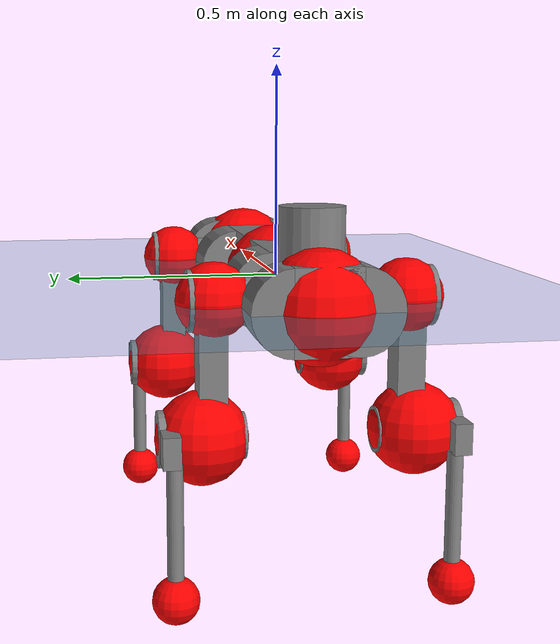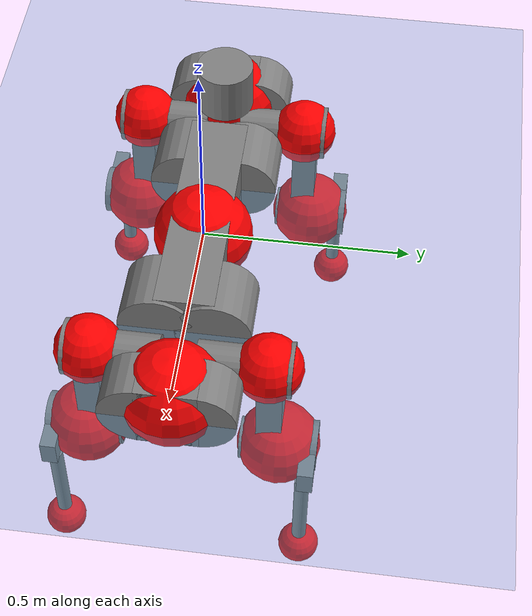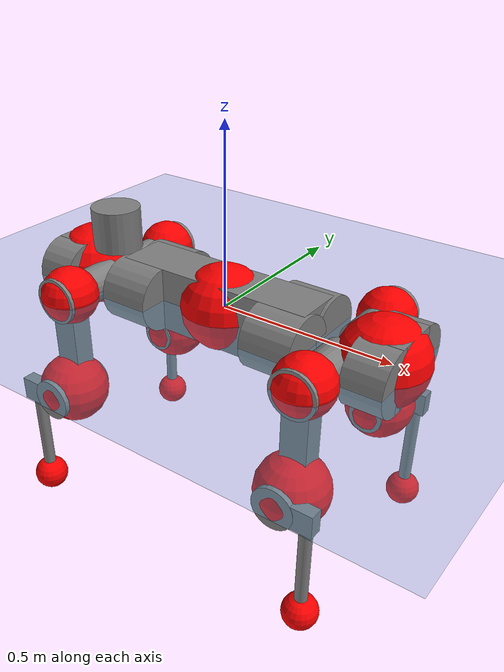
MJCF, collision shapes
<mujoco model="anymal_c">
  <compiler angle="radian" assetdir="assets" balanceinertia="true" inertiafromgeom="false"/>

  <option timestep="0.005" density="1.2" viscosity="2e-05"/>

  <size nkey="1"/>

  <visual>
    <quality shadowsize="8192"/>
    <map shadowclip="0.5"/>
  </visual>

  <default>
    <default class="/">
      <material specular="0" shininess="0.25"/>
      <geom contype="0" conaffinity="0" group="1" solref="-1000 -80"/>
      <site size="0.01 0.005 0.005" group="5"/>
      <general forcelimited="true" forcerange="-80 80" biastype="affine" gainprm="80" biasprm="0 -80 -2"/>
      <default class="anymal_c">
        <joint armature="0.01" damping="0.01" frictionloss="0.1"/>
        <default class="visual">
          <geom type="mesh" group="2"/>
          <default class="visual_zflip"/>
        </default>
        <default class="collision">
          <geom type="cylinder" group="3"/>
          <default class="foot">
            <geom size="0.03 0 0" type="sphere" condim="6" priority="1" friction="0.8 0.02 0.01" solimp="0.015 1 0.03"/>
          </default>
        </default>
      </default>
      <default class="reward_collision_sphere">
        <geom group="5" rgba="1 0 0 1"/>
      </default>
    </default>
  </default>

  <asset>
    <texture type="skybox" colorspace="auto" name="//unnamed_texture_0" builtin="gradient" rgb1="0.95 0.95 0.95" rgb2="0.95 0.95 0.95" width="100" height="600"/>
    <texture type="2d" colorspace="auto" name="texplane" builtin="checker" rgb1="0.345 0.575 0.748" rgb2="0.345 0.575 0.748" markrgb="1 1 1" width="512" height="512"/>
    <texture type="2d" colorspace="linear" name="base" file="base.png"/>
    <texture type="2d" colorspace="linear" name="top_shell" file="top_shell.png"/>
    <texture type="2d" colorspace="linear" name="bottom_shell" file="bottom_shell.png"/>
    <texture type="2d" colorspace="linear" name="remote" file="remote.png"/>
    <texture type="2d" colorspace="linear" name="hatch" file="hatch.png"/>
    <texture type="2d" colorspace="linear" name="handle" file="handle.png"/>
    <texture type="2d" colorspace="linear" name="face" file="face.png"/>
    <texture type="2d" colorspace="linear" name="battery" file="battery.png"/>
    <texture type="2d" colorspace="linear" name="lidar_cage" file="lidar_cage.png"/>
    <texture type="2d" colorspace="linear" name="depth_camera" file="depth_camera.png"/>
    <texture type="2d" colorspace="linear" name="wide_angle_camera" file="wide_angle_camera.png"/>
    <texture type="2d" colorspace="linear" name="lidar" file="lidar.png"/>
    <texture type="2d" colorspace="linear" name="drive" file="drive.png"/>
    <texture type="2d" colorspace="linear" name="hip_l" file="hip_l.png"/>
    <texture type="2d" colorspace="linear" name="shank_l" file="shank_l.png"/>
    <texture type="2d" colorspace="linear" name="foot" file="foot.png"/>
    <texture type="2d" colorspace="linear" name="thigh" file="thigh.png"/>
    <texture type="2d" colorspace="linear" name="shank_r" file="shank_r.png"/>
    <texture type="2d" colorspace="linear" name="hip_r" file="hip_r.png"/>
    <material name="MatPlane" class="/" texture="texplane" texuniform="true" texrepeat="2 2" specular="0.9" shininess="0.5"/>
    <material name="black_plastic" class="/" rgba="0.007 0.007 0.007 1"/>
    <material name="green" class="/" rgba="0.052 0.178 0.033 1"/>
    <material name="red" class="/" rgba="0.178 0.006 0.005 1"/>
    <material name="yellow" class="/" rgba="0.178 0.119 0.006 1"/>
    <material name="lwl" class="/" rgba="0.8 0.8 0.8 1"/>
    <material name="base" class="/" texture="base"/>
    <material name="top_shell" class="/" texture="top_shell"/>
    <material name="bottom_shell" class="/" texture="bottom_shell"/>
    <material name="hip_l" class="/" texture="hip_l"/>
    <material name="thigh" class="/" texture="thigh"/>
    <material name="shank_l" class="/" texture="shank_l"/>
    <material name="foot" class="/" texture="foot"/>
    <material name="hip_r" class="/" texture="hip_r"/>
    <material name="shank" class="/" texture="shank_r"/>
    <material name="hatch" class="/" texture="hatch"/>
    <material name="remote" class="/" texture="remote"/>
    <material name="handle" class="/" texture="handle"/>
    <material name="face" class="/" texture="face"/>
    <material name="depth_camera" class="/" texture="depth_camera"/>
    <material name="wide_angle_camera" class="/" texture="wide_angle_camera"/>
    <material name="battery" class="/" texture="battery"/>
    <material name="lidar_cage" class="/" texture="lidar_cage"/>
    <material name="lidar" class="/" texture="lidar"/>
    <material name="drive" class="/" texture="drive"/>
    <mesh name="base_0" class="/" file="base_0.obj"/>
    <mesh name="base_1" class="/" file="base_1.obj"/>
    <mesh name="base_2" class="/" file="base_2.obj"/>
    <mesh name="base_3" class="/" file="base_3.obj"/>
    <mesh name="base_4" class="/" file="base_4.obj"/>
    <mesh name="base_5" class="/" file="base_5.obj"/>
    <mesh name="top_shell" class="/" file="top_shell.obj"/>
    <mesh name="bottom_shell" class="/" file="bottom_shell.obj"/>
    <mesh name="remote" class="/" file="remote.obj"/>
    <mesh name="handle" class="/" file="handle.obj"/>
    <mesh name="face" class="/" file="face.obj"/>
    <mesh name="wide_angle_camera" class="/" file="wide_angle_camera.obj"/>
    <mesh name="depth_camera" class="/" file="depth_camera.obj"/>
    <mesh name="battery" class="/" file="battery.obj"/>
    <mesh name="lidar_cage" class="/" file="lidar_cage.obj"/>
    <mesh name="lidar" class="/" file="lidar.obj"/>
    <mesh name="drive" class="/" file="drive.obj"/>
    <mesh name="hip_l" class="/" file="hip_l.obj"/>
    <mesh name="thigh" class="/" file="thigh.obj"/>
    <mesh name="shank_l" class="/" file="shank_l.obj"/>
    <mesh name="foot" class="/" file="foot.obj"/>
    <mesh name="hip_r" class="/" file="hip_r.obj"/>
    <mesh name="hatch" class="/" file="hatch.obj"/>
    <mesh name="shank_r" class="/" file="shank_r.obj"/>
  </asset>

  <worldbody>
    <geom name="floor" class="/" size="100 100 0.125" type="plane" group="0" material="MatPlane"/>
    <light name="toplight_shadow" class="/" pos="0 0 5" dir="0.0990148 0.0990148 -0.990148" type="directional" ambient="0.04 0.04 0.04" diffuse="0.55 0.55 0.55" specular="0.12 0.12 0.12"/>
    <light name="toplight_fill" class="/" pos="0 0 5" dir="0.0990148 0.0990148 -0.990148" type="directional" castshadow="false" ambient="0.04 0.04 0.04" diffuse="0.3 0.3 0.3" specular="0.08 0.08 0.08"/>
    <body name="trunk" childclass="anymal_c" pos="-0.00108007 0.000604597 0.000608614" quat="1 9.85843e-06 -5.25846e-07 -1.79436e-06">
      <inertial pos="0.00101165 -0.000367315 0.050025" quat="0.498141 0.499342 0.500693 0.501816" mass="19.9166" diaginertia="0.853279 0.483419 0.249268"/>
      <joint name="//unnamed_joint_0" type="free" armature="0" damping="0" frictionloss="0"/>
      <geom name="//unnamed_geom_1" class="visual" material="green" mesh="base_0"/>
      <geom name="//unnamed_geom_2" class="visual" material="yellow" mesh="base_1"/>
      <geom name="//unnamed_geom_3" class="visual" material="red" mesh="base_2"/>
      <geom name="//unnamed_geom_4" class="visual" material="black_plastic" mesh="base_3"/>
      <geom name="//unnamed_geom_5" class="visual" material="lwl" mesh="base_4"/>
      <geom name="//unnamed_geom_6" class="visual" material="base" mesh="base_5"/>
      <geom name="trunk_1" class="collision" size="0.293284 0.0707927 0.0910192" type="box"/>
      <geom name="trunk_2" class="collision" size="0.0910192 0.073321" pos="0.230211 0.0664749 0" quat="0.707107 0 0.707107 0"/>
      <geom name="trunk_3" class="collision" size="0.0910192 0.073321" pos="-0.230211 0.0664749 0" quat="0.707107 0 0.707107 0"/>
      <geom name="trunk_4" class="collision" size="0.0910192 0.073321" pos="0.230211 -0.0664749 0" quat="0.707107 0 0.707107 0"/>
      <geom name="trunk_5" class="collision" size="0.0910192 0.073321" pos="-0.230211 -0.0664749 0" quat="0.707107 0 0.707107 0"/>
      <geom name="//unnamed_geom_12" class="visual" material="top_shell" mesh="top_shell"/>
      <geom name="//unnamed_geom_13" class="visual" material="bottom_shell" mesh="bottom_shell"/>
      <geom name="//unnamed_geom_14" class="visual" material="remote" mesh="remote"/>
      <geom name="//unnamed_geom_15" class="visual" material="handle" mesh="handle"/>
      <geom name="//unnamed_geom_16" class="visual" pos="0.438724 0 0" quat="1 0 0 0" material="face" mesh="face"/>
      <geom name="trunk_6" class="collision" size="0.0556228 0.0707927 0.0910192" pos="0.496939 0 0" type="box"/>
      <geom name="//unnamed_geom_18" class="collision" size="0.0910192 0.0556228" pos="0.496939 0.0664749 0" quat="0.707107 0 0.707107 0"/>
      <geom name="//unnamed_geom_19" class="collision" size="0.0910192 0.0556228" pos="0.496939 -0.0664749 0" quat="0.707107 0 0.707107 0"/>
      <geom name="//unnamed_geom_20" class="visual" pos="0.488629 0 -0.0297086" quat="0.965926 0 0.258819 0" material="depth_camera" mesh="depth_camera"/>
      <geom name="//unnamed_geom_21" class="visual" pos="0.542981 0 0.0153576" material="wide_angle_camera" mesh="wide_angle_camera"/>
      <geom name="//unnamed_geom_22" class="visual_zflip" pos="-0.438724 0 0" quat="0 0 0 1" material="face" mesh="face"/>
      <geom name="trunk_7" class="collision" size="0.0556228 0.0707927 0.0910192" pos="-0.496939 0 0" quat="0 0 0 1" type="box"/>
      <geom name="//unnamed_geom_24" class="collision" size="0.0910192 0.0556228" pos="-0.496939 -0.0664749 0" quat="0 -0.707107 0 0.707107"/>
      <geom name="//unnamed_geom_25" class="collision" size="0.0910192 0.0556228" pos="-0.496939 0.0664749 0" quat="0 -0.707107 0 0.707107"/>
      <geom name="//unnamed_geom_26" class="visual" pos="-0.488629 0 -0.0297086" quat="0 -0.258819 0 0.965926" material="depth_camera" mesh="depth_camera"/>
      <geom name="//unnamed_geom_27" class="visual_zflip" pos="-0.542981 0 0.0153576" quat="0 0 0 1" material="wide_angle_camera" mesh="wide_angle_camera"/>
      <geom name="//unnamed_geom_28" class="visual" material="battery" mesh="battery"/>
      <geom name="//unnamed_geom_29" class="visual" pos="0 0.0711805 0.0300495" quat="0.683013 -0.183013 0.183013 0.683013" material="depth_camera" mesh="depth_camera"/>
      <geom name="//unnamed_geom_30" class="visual" pos="0 -0.0711805 0.0300495" quat="0.683013 0.183013 0.183013 -0.683013" material="depth_camera" mesh="depth_camera"/>
      <geom name="//unnamed_geom_31" class="visual" pos="-0.385273 0 0.0754029" quat="1 0 0 0" material="lidar_cage" mesh="lidar_cage"/>
      <geom name="trunk_8" class="collision" size="0.0707927 0.0606795" pos="-0.385273 0 0.136956"/>
      <geom name="//unnamed_geom_33" class="visual" pos="-0.385273 -4.27452e-05 0.145882" quat="0.707107 0 0 -0.707107" material="lidar" mesh="lidar"/>
      <geom name="//unnamed_geom_34" class="visual" pos="0.317427 0.0987897 -1.3153e-09" quat="0.258819 0.965926 0 0" material="drive" mesh="drive"/>
      <geom name="//unnamed_geom_35" class="visual" pos="0.317427 -0.0987897 1.3153e-09" quat="0.258819 -0.965926 0 0" material="drive" mesh="drive"/>
      <geom name="//unnamed_geom_36" class="visual" pos="-0.317427 0.0987897 1.3153e-09" quat="0 0 0.965926 -0.258819" material="drive" mesh="drive"/>
      <geom name="//unnamed_geom_37" class="visual" pos="-0.317427 -0.0987897 -1.3153e-09" quat="0 0 -0.965926 -0.258819" material="drive" mesh="drive"/>
      <geom name="//unnamed_geom_38" class="visual" pos="0.122779 0 0.07489" quat="1 0 0 0" material="hatch" mesh="hatch"/>
      <geom name="//unnamed_geom_39" class="reward_collision_sphere" size="0.121359"/>
      <geom name="//unnamed_geom_40" class="reward_collision_sphere" size="0.121359" pos="0.476299 0 0"/>
      <geom name="//unnamed_geom_41" class="reward_collision_sphere" size="0.121359" pos="-0.476299 0 0"/>
      <site name="imu" pos="0.262291 0.00561857 0.0469039" size="0.0101132"/>
      <camera name="track" pos="0 -1.89928 0" quat="0.707107 0.707107 0 0" mode="trackcom"/>
      <camera name="ego_camera" pos="0.476299 0 -0.0410356" quat="-0.5 -0.5 0.5 0.5"/>
      <body name="LF_HIP" pos="0.318603 0.100015 -0.00141076" quat="0.259008 0.965875 -0.000322489 0.000460926">
        <inertial pos="0.0586618 -0.0133146 -0.00745021" quat="-0.127051 0.710368 -0.134262 0.679124" mass="2.87638" diaginertia="0.00776963 0.00377772 0.00371254"/>
        <joint name="LF_HAA" pos="0 0 0" axis="0.999992 -0.00289946 -0.00291206" range="-0.714737 0.481636" armature="0.00998406" damping="0.0143564" frictionloss="0.0973979"/>
        <geom name="//unnamed_geom_42" class="visual" pos="0 -7.73734e-05 1.27085e-05" quat="0.258819 -0.965926 0 0" material="hip_l" mesh="hip_l"/>
        <geom name="//unnamed_geom_43" class="visual" pos="0.0634007 -0.075418 -0.0441066" quat="0.183013 -0.683013 0.683013 0.183013" material="drive" mesh="drive"/>
        <geom name="//unnamed_geom_44" class="collision" size="0.0505662 0.0707927" pos="0.0634007 -0.0113575 -0.00708377" quat="-0.353553 -0.612372 0.612372 -0.353553"/>
        <body name="LF_THIGH" pos="0.0632489 -0.0689704 -0.0430541" quat="0.182987 -0.683099 0.682932 0.183019">
          <inertial pos="0.0339553 -0.000161021 -0.251422" quat="0.993135 -0.00570024 -0.0802729 0.0848872" mass="3.17232" diaginertia="0.0402482 0.0231748 0.00479818"/>
          <joint name="LF_HFE" pos="0 0 0" axis="0.999993 0.00334251 -0.00162011" stiffness="0.0080774" range="-3.14588 3.13166" armature="0.00991314" damping="0.00157618" frictionloss="0.0964591"/>
          <geom name="//unnamed_geom_45" class="visual" pos="0.00216472 3.4111e-06 0" quat="0.707107 0 0 -0.707107" material="thigh" mesh="thigh"/>
          <geom name="//unnamed_geom_46" class="collision" size="0.0657361 0.040453" pos="0.0423377 0 0" quat="0.5 0.5 -0.5 -0.5"/>
          <geom name="//unnamed_geom_47" class="collision" size="0.0379247 0.0303397 0.142914" pos="0.0317533 0 -0.144973" quat="0.707107 0 0 -0.707107" type="box"/>
          <geom name="//unnamed_geom_48" class="visual" pos="0.106162 0 -0.292379" quat="1 0 0 0" material="drive" mesh="drive"/>
          <geom name="//unnamed_geom_49" class="collision" size="0.0505662 0.0707927" pos="0.0320708 0 -0.292379" quat="0.707107 0 0.707107 0"/>
          <geom name="//unnamed_geom_50" class="reward_collision_sphere" size="0.0809059" pos="0.0264611 0 0"/>
          <body name="LF_SHANK" pos="0.106628 -0.000102609 -0.293032" quat="1 8.12854e-05 -0.000170494 -0.000412952">
            <inertial pos="0.00485842 -0.0590906 -0.0824095" quat="0.992968 -0.116079 -0.000504316 -0.0232157" mass="0.609543" diaginertia="0.0135524 0.00705638 0.00128479"/>
            <joint name="LF_KFE" pos="0 0 0" axis="0.999999 -0.000588575 -0.00103373" range="-3.13934 3.13544" armature="0.0106604" damping="0.00944726" frictionloss="0.0989851"/>
            <geom name="//unnamed_geom_51" class="visual" pos="0.000705869 0.00376373 0" quat="0.707107 0 0 -0.707107" material="shank_l" mesh="shank_l"/>
            <geom name="LF_kfe_act" class="collision" size="0.0606795 0.0202265" pos="0.0211688 0 0" quat="0.5 0.5 -0.5 -0.5"/>
            <geom name="//unnamed_geom_53" class="collision" size="0.0581501 0.0341322 0.0192152" pos="0.0211688 -0.0546034 0" quat="0.5 0.5 -0.5 -0.5" type="box"/>
            <geom name="//unnamed_geom_54" class="visual" pos="0.0138125 -0.082308 -0.34672" quat="0.382683 0 0 -0.92388" material="foot" mesh="foot"/>
            <geom name="LF_calf" class="collision" size="0.0176982 0.142852" pos="0.0138127 -0.0835209 -0.17336" quat="0.707107 0 0 -0.707107"/>
            <geom name="LF_foot" class="foot" size="0.0288474" pos="0.0138127 -0.0835209 -0.323637" quat="0.707107 0 0 -0.707107"/>
            <geom name="//unnamed_geom_57" class="reward_collision_sphere" size="0.101132" pos="-0.0529221 0 0"/>
            <geom name="//unnamed_geom_58" class="reward_collision_sphere" size="0.0505662" pos="0.0138127 -0.0835209 -0.323637"/>
            <site name="LF_foot" class="foot" pos="0.0138127 -0.0835209 -0.323637" quat="0.707107 0 0 -0.707107" size="0.0101132"/>
          </body>
        </body>
      </body>
      <body name="RF_HIP" pos="0.317999 -0.098865 -3.81606e-05" quat="0.259012 -0.965874 0.000202382 5.58883e-06">
        <inertial pos="0.0600406 0.0147314 -0.00850905" quat="0.135028 0.679891 0.126711 0.709549" mass="2.91611" diaginertia="0.00767453 0.00374939 0.00374817"/>
        <joint name="RF_HAA" pos="0 0 0" axis="1 0.00090036 -0.00037338" range="-0.51199 0.720735" armature="0.00948129" damping="0.00995553" frictionloss="0.106974"/>
        <geom name="//unnamed_geom_59" class="visual" pos="0 7.73728e-05 1.27085e-05" quat="0.258819 0.965926 0 0" material="hip_r" mesh="hip_r"/>
        <geom name="//unnamed_geom_60" class="visual" pos="0.0634007 0.075418 -0.0441066" quat="0.183013 0.683013 0.683013 -0.183013" material="drive" mesh="drive"/>
        <geom name="//unnamed_geom_61" class="collision" size="0.0505662 0.0707927" pos="0.0634007 0.0113575 -0.00708377" quat="-0.353553 0.612372 0.612372 0.353553"/>
        <body name="RF_THIGH" pos="0.0642239 0.0687686 -0.0433015" quat="0.18308 0.682784 0.683235 -0.18297">
          <inertial pos="0.0332322 -0.00138597 -0.251916" quat="0.992957 -0.00495153 -0.0785947 0.0885184" mass="3.13598" diaginertia="0.040525 0.0234491 0.00478589"/>
          <joint name="RF_HFE" pos="0 0 0" axis="0.999992 -0.00353195 0.00197538" stiffness="0.00516263" range="-3.13985 3.14712" armature="0.0101066" damping="0.00919736" frictionloss="0.0973097"/>
          <geom name="//unnamed_geom_62" class="visual" pos="0.00216472 3.4111e-06 0" quat="0.707107 0 0 -0.707107" material="thigh" mesh="thigh"/>
          <geom name="//unnamed_geom_63" class="collision" size="0.0657361 0.040453" pos="0.0423377 0 0" quat="0.5 0.5 0.5 0.5"/>
          <geom name="//unnamed_geom_64" class="collision" size="0.0379247 0.0303397 0.142914" pos="0.0317533 0 -0.144973" quat="0.707107 0 0 0.707107" type="box"/>
          <geom name="//unnamed_geom_65" class="visual" pos="0.106162 0 -0.292379" quat="1 0 0 0" material="drive" mesh="drive"/>
          <geom name="//unnamed_geom_66" class="collision" size="0.0505662 0.0707927" pos="0.0320708 0 -0.292379" quat="0.707107 0 0.707107 0"/>
          <geom name="//unnamed_geom_67" class="reward_collision_sphere" size="0.0809059" pos="0.0264611 0 0"/>
          <body name="RF_SHANK" pos="0.10509 0.000151113 -0.292657" quat="1 1.772e-06 -1.70276e-06 -6.0385e-06">
            <inertial pos="0.00498766 0.0582256 -0.082718" quat="0.993091 0.114407 0.000330335 0.0260989" mass="0.610326" diaginertia="0.0135564 0.00718579 0.00126775"/>
            <joint name="RF_KFE" pos="0 0 0" axis="0.99999 0.00427061 0.00124829" range="-3.13896 3.13229" armature="0.0100122" damping="0.00427669" frictionloss="0.102391"/>
            <geom name="//unnamed_geom_68" class="visual" pos="0.000705865 -0.00376372 0" quat="0.707107 0 0 0.707107" material="shank" mesh="shank_r"/>
            <geom name="RF_kfe_act" class="collision" size="0.0606795 0.0202265" pos="0.0211688 0 0" quat="0.5 0.5 0.5 0.5"/>
            <geom name="//unnamed_geom_70" class="collision" size="0.0581501 0.0341322 0.0192152" pos="0.0211688 0.0546034 0" quat="0.5 0.5 0.5 0.5" type="box"/>
            <geom name="//unnamed_geom_71" class="visual" pos="0.0138128 0.082308 -0.34672" quat="0.382683 0 0 0.92388" material="foot" mesh="foot"/>
            <geom name="RF_calf" class="collision" size="0.0176982 0.142852" pos="0.0138127 0.0835209 -0.17336" quat="0.707107 0 0 0.707107"/>
            <geom name="RF_foot" class="foot" size="0.0299442" pos="0.0138127 0.0835209 -0.323637" quat="0.707107 0 0 0.707107"/>
            <geom name="//unnamed_geom_74" class="reward_collision_sphere" size="0.101132" pos="-0.0529221 0 0"/>
            <geom name="//unnamed_geom_75" class="reward_collision_sphere" size="0.0505662" pos="0.0138127 0.0835209 -0.323637"/>
            <site name="RF_foot" class="foot" pos="0.0138127 0.0835209 -0.323637" quat="0.707107 0 0 0.707107" size="0.0101132"/>
          </body>
        </body>
      </body>
      <body name="LH_HIP" pos="-0.317341 0.0991197 -0.000295305" quat="-5.37991e-05 -0.000769976 0.965793 -0.259313">
        <inertial pos="0.0612503 0.0139444 -0.00849501" quat="0.135242 0.67913 0.127952 0.710014" mass="2.87876" diaginertia="0.00775739 0.0037634 0.00371413"/>
        <joint name="LH_HAA" pos="0 0 0" axis="0.999999 0.000770445 0.00108285" range="-0.503768 0.731632" armature="0.0100393" damping="0.0101367" frictionloss="0.0982907"/>
        <geom name="//unnamed_geom_76" class="visual" pos="0 7.73728e-05 1.27085e-05" quat="-0.258819 -0.965926 0 0" material="hip_r" mesh="hip_r"/>
        <geom name="//unnamed_geom_77" class="visual" pos="0.0634007 0.075418 -0.0441066" quat="0.183013 0.683013 0.683013 -0.183013" material="drive" mesh="drive"/>
        <geom name="//unnamed_geom_78" class="collision" size="0.0505662 0.0707927" pos="0.0634007 0.0113575 -0.00708377" quat="-0.353553 0.612372 0.612372 0.353553"/>
        <body name="LH_THIGH" pos="0.0616972 0.0678987 -0.0438587" quat="0.183035 0.683066 0.68291 -0.183175">
          <inertial pos="0.0326469 -0.00058051 -0.252387" quat="0.992546 -0.00602158 -0.0820601 0.089907" mass="3.17133" diaginertia="0.0402276 0.0231536 0.00474112"/>
          <joint name="LH_HFE" pos="0 0 0" axis="0.999999 0.00136757 -0.000104454" range="-3.15171 3.13714" armature="0.0104405" damping="0.00232291" frictionloss="0.103127"/>
          <geom name="//unnamed_geom_79" class="visual" pos="0.00216472 3.4111e-06 0" quat="0.707107 0 0 -0.707107" material="thigh" mesh="thigh"/>
          <geom name="//unnamed_geom_80" class="collision" size="0.0657361 0.040453" pos="0.0423377 0 0" quat="0.5 0.5 -0.5 -0.5"/>
          <geom name="//unnamed_geom_81" class="collision" size="0.0379247 0.0303397 0.142914" pos="0.0317533 0 -0.144973" quat="0.707107 0 0 -0.707107" type="box"/>
          <geom name="//unnamed_geom_82" class="visual" pos="0.106162 0 -0.292379" quat="1 0 0 0" material="drive" mesh="drive"/>
          <geom name="//unnamed_geom_83" class="collision" size="0.0505662 0.0707927" pos="0.0320708 0 -0.292379" quat="0.707107 0 0.707107 0"/>
          <geom name="//unnamed_geom_84" class="reward_collision_sphere" size="0.0809059" pos="0.0264611 0 0"/>
          <body name="LH_SHANK" pos="0.105514 -0.000150457 -0.293154" quat="1 -6.41067e-08 4.35464e-08 -5.93145e-08">
            <inertial pos="0.00577574 0.0581046 -0.0836813" quat="0.992973 0.115583 -0.00140043 0.0253463" mass="0.610066" diaginertia="0.0135264 0.00712661 0.00127963"/>
            <joint name="LH_KFE" pos="0 0 0" axis="0.999999 -0.00108308 0.0010037" range="-3.14598 3.14171" armature="0.0103614" damping="0.00263845" frictionloss="0.10203"/>
            <geom name="//unnamed_geom_85" class="visual" pos="0.000705865 -0.00376372 0" quat="-0.707107 0 0 -0.707107" material="shank" mesh="shank_r"/>
            <geom name="LH_kfe_act" class="collision" size="0.0606795 0.0202265" pos="0.0211688 0 0" quat="0.5 0.5 -0.5 -0.5"/>
            <geom name="//unnamed_geom_87" class="collision" size="0.0581501 0.0341322 0.0192152" pos="0.0211688 0.0546034 0" quat="0.5 0.5 -0.5 -0.5" type="box"/>
            <geom name="//unnamed_geom_88" class="visual" pos="0.0138128 0.082308 -0.34672" quat="-0.382683 0 0 -0.92388" material="foot" mesh="foot"/>
            <geom name="LH_calf" class="collision" size="0.0176982 0.142852" pos="0.0138127 0.0835209 -0.17336" quat="0.707107 0 0 -0.707107"/>
            <geom name="LH_foot" class="foot" size="0.0306656" pos="0.0138127 0.0835209 -0.323637" quat="0.707107 0 0 -0.707107"/>
            <geom name="//unnamed_geom_91" class="reward_collision_sphere" size="0.101132" pos="-0.0529221 0 0"/>
            <geom name="//unnamed_geom_92" class="reward_collision_sphere" size="0.0505662" pos="0.0138127 0.0835209 -0.323637"/>
            <site name="LH_foot" class="foot" pos="0.0138127 0.0835209 -0.323637" quat="0.707107 0 0 -0.707107" size="0.0101132"/>
          </body>
        </body>
      </body>
      <body name="RH_HIP" pos="-0.317011 -0.10003 0.000338764" quat="-0.000226927 6.09663e-05 -0.965895 -0.258933">
        <inertial pos="0.0599368 -0.0147842 -0.00860294" quat="-0.129279 0.708044 -0.133636 0.68125" mass="2.87399" diaginertia="0.00769237 0.00376023 0.0037711"/>
        <joint name="RH_HAA" pos="0 0 0" axis="0.999999 -0.0010951 0.000441834" range="-0.713489 0.4958" armature="0.0106389" damping="0.0186632" frictionloss="0.0993078"/>
        <geom name="//unnamed_geom_93" class="visual" pos="0 -7.73734e-05 1.27085e-05" quat="-0.258819 0.965926 0 0" material="hip_l" mesh="hip_l"/>
        <geom name="//unnamed_geom_94" class="visual" pos="0.0634007 -0.075418 -0.0441066" quat="-0.183013 0.683013 -0.683013 -0.183013" material="drive" mesh="drive"/>
        <geom name="//unnamed_geom_95" class="collision" size="0.0505662 0.0707927" pos="0.0634007 -0.0113575 -0.00708377" quat="0.353553 0.612372 -0.612372 0.353553"/>
        <body name="RH_THIGH" pos="0.0633653 -0.0691074 -0.0435264" quat="-0.183278 0.682973 -0.682977 -0.183027">
          <inertial pos="0.0326826 0.000943291 -0.252138" quat="0.993122 -0.00494447 -0.0808808 0.0845087" mass="3.23312" diaginertia="0.0408078 0.0231857 0.0047463"/>
          <joint name="RH_HFE" pos="0 0 0" axis="0.999998 6.63565e-06 -0.00196353" range="-3.15392 3.12694" armature="0.00960784" damping="0.00587319" frictionloss="0.100308"/>
          <geom name="//unnamed_geom_96" class="visual" pos="0.00216472 3.4111e-06 0" quat="0.707107 0 0 -0.707107" material="thigh" mesh="thigh"/>
          <geom name="//unnamed_geom_97" class="collision" size="0.0657361 0.040453" pos="0.0423377 0 0" quat="0.5 0.5 0.5 0.5"/>
          <geom name="//unnamed_geom_98" class="collision" size="0.0379247 0.0303397 0.142914" pos="0.0317533 0 -0.144973" quat="0.707107 0 0 0.707107" type="box"/>
          <geom name="//unnamed_geom_99" class="visual" pos="0.106162 0 -0.292379" quat="1 0 0 0" material="drive" mesh="drive"/>
          <geom name="//unnamed_geom_100" class="collision" size="0.0505662 0.0707927" pos="0.0320708 0 -0.292379" quat="0.707107 0 0.707107 0"/>
          <geom name="//unnamed_geom_101" class="reward_collision_sphere" size="0.0809059" pos="0.0264611 0 0"/>
          <body name="RH_SHANK" pos="0.104093 -0.000157766 -0.292022" quat="1 -0.000115826 4.30808e-05 -3.57404e-05">
            <inertial pos="0.00742188 -0.0580247 -0.0837395" quat="0.993252 -0.113518 -0.00169316 -0.0237056" mass="0.609888" diaginertia="0.0131362 0.00706901 0.00124097"/>
            <joint name="RH_KFE" pos="0 0 0" axis="0.999984 -0.00444782 -0.00336266" range="-3.13115 3.16687" armature="0.0102292" damping="0.0115128" frictionloss="0.10158"/>
            <geom name="//unnamed_geom_102" class="visual" pos="0.000705869 0.00376373 0" quat="0.707107 0 0 -0.707107" material="shank_l" mesh="shank_l"/>
            <geom name="RH_kfe_act" class="collision" size="0.0606795 0.0202265" pos="0.0211688 0 0" quat="0.5 0.5 0.5 0.5"/>
            <geom name="//unnamed_geom_104" class="collision" size="0.0581501 0.0341322 0.0192152" pos="0.0211688 -0.0546034 0" quat="0.5 0.5 0.5 0.5" type="box"/>
            <geom name="//unnamed_geom_105" class="visual" pos="0.0138125 -0.082308 -0.34672" quat="0.382683 0 0 -0.92388" material="foot" mesh="foot"/>
            <geom name="RH_calf" class="collision" size="0.0176982 0.142852" pos="0.0138127 -0.0835209 -0.17336" quat="0.707107 0 0 0.707107"/>
            <geom name="RH_foot" class="foot" size="0.0281406" pos="0.0138127 -0.0835209 -0.323637" quat="0.707107 0 0 0.707107"/>
            <geom name="//unnamed_geom_108" class="reward_collision_sphere" size="0.101132" pos="-0.0529221 0 0"/>
            <geom name="//unnamed_geom_109" class="reward_collision_sphere" size="0.0505662" pos="0.0138127 -0.0835209 -0.323637"/>
            <site name="RH_foot" class="foot" pos="0.0138127 -0.0835209 -0.323637" quat="0.707107 0 0 0.707107" size="0.0101132"/>
          </body>
        </body>
      </body>
    </body>
  </worldbody>

  <contact>
    <pair class="/" geom1="floor" geom2="LF_foot" name="//unnamed_contact_0"/>
    <pair class="/" geom1="floor" geom2="RF_foot" name="//unnamed_contact_1"/>
    <pair class="/" geom1="floor" geom2="LH_foot" name="//unnamed_contact_2"/>
    <pair class="/" geom1="floor" geom2="RH_foot" name="//unnamed_contact_3"/>
  </contact>

  <actuator>
    <general name="LF_HAA" class="/" joint="LF_HAA" forcerange="-81.5399 81.5399" gainprm="81.9655" biasprm="0 -81.9655 -1.93281"/>
    <general name="LF_HFE" class="/" joint="LF_HFE" forcerange="-83.6821 83.6821" gainprm="81.9655" biasprm="0 -81.9655 -1.93281"/>
    <general name="LF_KFE" class="/" joint="LF_KFE" forcerange="-80.7569 80.7569" gainprm="81.9655" biasprm="0 -81.9655 -1.93281"/>
    <general name="RF_HAA" class="/" joint="RF_HAA" forcerange="-86.3128 86.3128" gainprm="81.9655" biasprm="0 -81.9655 -1.93281"/>
    <general name="RF_HFE" class="/" joint="RF_HFE" forcerange="-82.0739 82.0739" gainprm="81.9655" biasprm="0 -81.9655 -1.93281"/>
    <general name="RF_KFE" class="/" joint="RF_KFE" forcerange="-82.4145 82.4145" gainprm="81.9655" biasprm="0 -81.9655 -1.93281"/>
    <general name="LH_HAA" class="/" joint="LH_HAA" forcerange="-81.7527 81.7527" gainprm="81.9655" biasprm="0 -81.9655 -1.93281"/>
    <general name="LH_HFE" class="/" joint="LH_HFE" forcerange="-81.4244 81.4244" gainprm="81.9655" biasprm="0 -81.9655 -1.93281"/>
    <general name="LH_KFE" class="/" joint="LH_KFE" forcerange="-81.5535 81.5535" gainprm="81.9655" biasprm="0 -81.9655 -1.93281"/>
    <general name="RH_HAA" class="/" joint="RH_HAA" forcerange="-82.9582 82.9582" gainprm="81.9655" biasprm="0 -81.9655 -1.93281"/>
    <general name="RH_HFE" class="/" joint="RH_HFE" forcerange="-81.1993 81.1993" gainprm="81.9655" biasprm="0 -81.9655 -1.93281"/>
    <general name="RH_KFE" class="/" joint="RH_KFE" forcerange="-83.3106 83.3106" gainprm="81.9655" biasprm="0 -81.9655 -1.93281"/>
  </actuator>

  <sensor>
    <gyro site="imu" name="imu_angular_velocity"/>
    <velocimeter site="imu" name="imu_linear_velocity"/>
    <framelinvel objtype="site" objname="LF_foot" name="LF_foot_global_linear_velocity"/>
    <framelinvel objtype="site" objname="RF_foot" name="RF_foot_global_linear_velocity"/>
    <framelinvel objtype="site" objname="LH_foot" name="LH_foot_global_linear_velocity"/>
    <framelinvel objtype="site" objname="RH_foot" name="RH_foot_global_linear_velocity"/>
  </sensor>

  <keyframe>
    <key name="home" qpos="0 0 0.55 1 0 0 0 0 0.4 -0.8 0 -0.4 0.8 0 -0.4 0.8 0 0.4 -0.8"/>
  </keyframe>
</mujoco>
